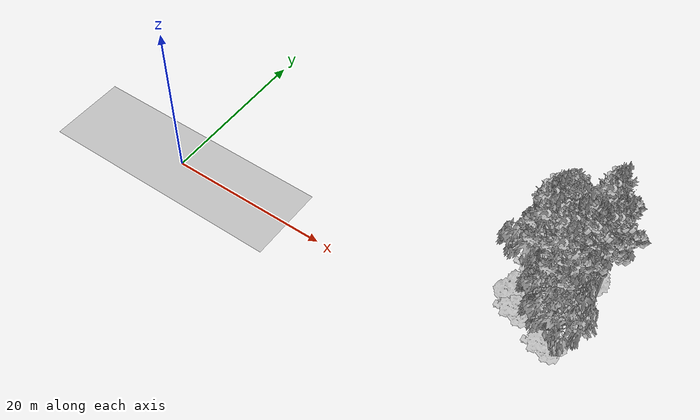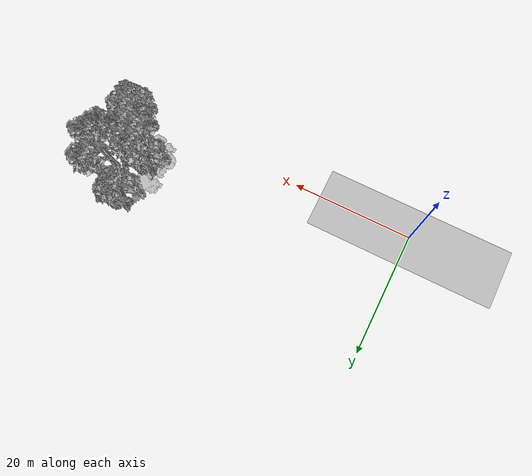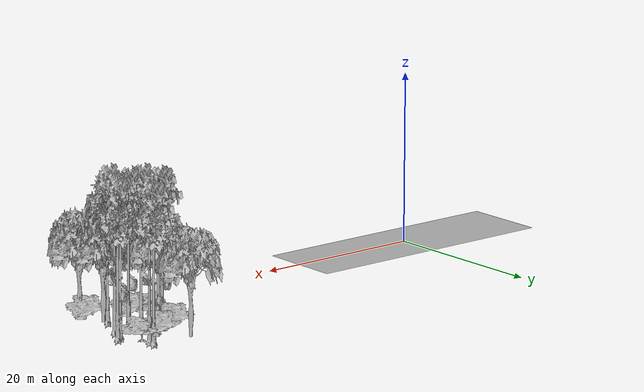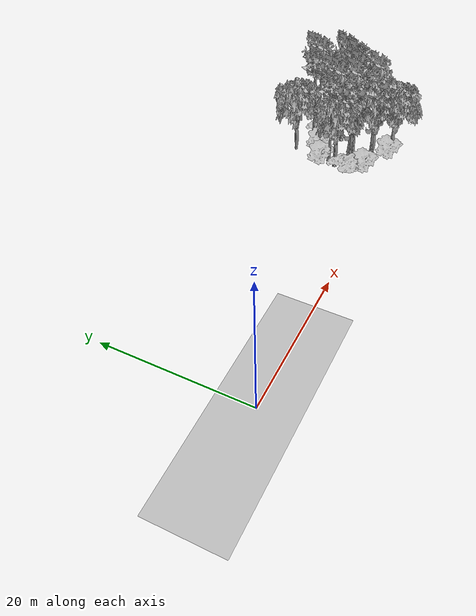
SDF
<sdf version="1.7">
 <world name="default">
  <model name="ground_plane">
   <static>1</static>
   <link name="link">
    <collision name="collision">
     <pose>-50 0 0 0 -0 0</pose>
     <geometry><plane><normal>0 0 1</normal><size>100 100</size></plane></geometry>
     <surface><contact><ode><min_depth>0.01</min_depth><max_vel>0</max_vel></ode></contact></surface>
    </collision>
    <visual name="grass">
     <cast_shadows>0</cast_shadows>
     <geometry>
      <mesh>
       <scale>0.5814285714285714 0.18142857142857144 0.1</scale>
       <uri>file://grass_plane/meshes/grass_plane.dae</uri>
      </mesh>
     </geometry>
    </visual>
   </link>
  </model>
  <model name="Tree 2">
   <static>1</static>
   <pose>42.655952371906366 4.007602021695671 0 1.57079 -0 0</pose>
   <link name="link">
    <collision name="collision">
     <geometry><mesh><scale>3 2 3</scale><uri>model://tree_3/meshes/tree_3.obj</uri></mesh></geometry>
    </collision>
    <visual name="visual">
     <geometry><mesh><scale>3 2 3</scale><uri>model://tree_3/meshes/tree_3.obj</uri></mesh></geometry>
    </visual>
   </link>
  </model>
  <model name="Tree 4">
   <static>1</static>
   <pose>40.84279110203407 6.378118887128952 0 1.57079 -0 0</pose>
   <link name="link">
    <collision name="collision">
     <geometry><mesh><scale>4 2.5 4</scale><uri>model://tree_1/meshes/tree_1.obj</uri></mesh></geometry>
    </collision>
    <visual name="visual">
     <geometry><mesh><scale>4 2.5 4</scale><uri>model://tree_1/meshes/tree_1.obj</uri></mesh></geometry>
    </visual>
   </link>
  </model>
  <model name="Tree 18">
   <static>1</static>
   <pose>44.49626839596736 11.67631269223818 0 1.57079 -0 0</pose>
   <link name="link">
    <collision name="collision">
     <geometry><mesh><scale>3 2 3</scale><uri>model://tree_3/meshes/tree_3.obj</uri></mesh></geometry>
    </collision>
    <visual name="visual">
     <geometry><mesh><scale>3 2 3</scale><uri>model://tree_3/meshes/tree_3.obj</uri></mesh></geometry>
    </visual>
   </link>
  </model>
  <model name="Tree 43">
   <static>1</static>
   <pose>44.73826522379696 6.542842063307415 0 1.57079 -0 0</pose>
   <link name="link">
    <collision name="collision">
     <geometry><mesh><scale>3.5 5 3.5</scale><uri>model://tree_9/meshes/tree_9.obj</uri></mesh></geometry>
    </collision>
    <visual name="visual">
     <geometry><mesh><scale>3.5 5 3.5</scale><uri>model://tree_9/meshes/tree_9.obj</uri></mesh></geometry>
    </visual>
   </link>
  </model>
  <model name="Tree 84">
   <static>1</static>
   <pose>42.24227388884721 9.245253654225301 0 1.57079 -0 0</pose>
   <link name="link">
    <collision name="collision">
     <geometry><mesh><scale>3.5 5 3.5</scale><uri>model://tree_9/meshes/tree_9.obj</uri></mesh></geometry>
    </collision>
    <visual name="visual">
     <geometry><mesh><scale>3.5 5 3.5</scale><uri>model://tree_9/meshes/tree_9.obj</uri></mesh></geometry>
    </visual>
   </link>
  </model>
  <model name="Tree 107">
   <static>1</static>
   <pose>48.704224053340596 9.947067350408084 0 1.57079 -0 0</pose>
   <link name="link">
    <collision name="collision">
     <geometry><mesh><scale>3.5 5 3.5</scale><uri>model://tree_9/meshes/tree_9.obj</uri></mesh></geometry>
    </collision>
    <visual name="visual">
     <geometry><mesh><scale>3.5 5 3.5</scale><uri>model://tree_9/meshes/tree_9.obj</uri></mesh></geometry>
    </visual>
   </link>
  </model>
  <model name="Tree 116">
   <static>1</static>
   <pose>41.65307214252017 8.128079704820419 0 1.57079 -0 0</pose>
   <link name="link">
    <collision name="collision">
     <geometry><mesh><scale>3.5 5 3.5</scale><uri>model://tree_2/meshes/tree_2.obj</uri></mesh></geometry>
    </collision>
    <visual name="visual">
     <geometry><mesh><scale>3.5 5 3.5</scale><uri>model://tree_2/meshes/tree_2.obj</uri></mesh></geometry>
    </visual>
   </link>
  </model>
  <model name="Tree 140">
   <static>1</static>
   <pose>47.0773700562568 7.800837692570177 0 1.57079 -0 0</pose>
   <link name="link">
    <collision name="collision">
     <geometry><mesh><scale>3.5 5 3.5</scale><uri>model://tree_9/meshes/tree_9.obj</uri></mesh></geometry>
    </collision>
    <visual name="visual">
     <geometry><mesh><scale>3.5 5 3.5</scale><uri>model://tree_9/meshes/tree_9.obj</uri></mesh></geometry>
    </visual>
   </link>
  </model>
  <model name="Tree 151">
   <static>1</static>
   <pose>46.074264058123774 4.0331765882205985 0 1.57079 -0 0</pose>
   <link name="link">
    <collision name="collision">
     <geometry><mesh><scale>3.5 5 3.5</scale><uri>model://tree_2/meshes/tree_2.obj</uri></mesh></geometry>
    </collision>
    <visual name="visual">
     <geometry><mesh><scale>3.5 5 3.5</scale><uri>model://tree_2/meshes/tree_2.obj</uri></mesh></geometry>
    </visual>
   </link>
  </model>
  <model name="Tree 154">
   <static>1</static>
   <pose>47.42613843579346 7.671969162460989 0 1.57079 -0 0</pose>
   <link name="link">
    <collision name="collision">
     <geometry><mesh><scale>3.5 5 3.5</scale><uri>model://tree_9/meshes/tree_9.obj</uri></mesh></geometry>
    </collision>
    <visual name="visual">
     <geometry><mesh><scale>3.5 5 3.5</scale><uri>model://tree_9/meshes/tree_9.obj</uri></mesh></geometry>
    </visual>
   </link>
  </model>
  <model name="Tree 166">
   <static>1</static>
   <pose>47.058337674399525 1.8976143645502788 0 1.57079 -0 0</pose>
   <link name="link">
    <collision name="collision">
     <geometry><mesh><scale>3 2 3</scale><uri>model://tree_3/meshes/tree_3.obj</uri></mesh></geometry>
    </collision>
    <visual name="visual">
     <geometry><mesh><scale>3 2 3</scale><uri>model://tree_3/meshes/tree_3.obj</uri></mesh></geometry>
    </visual>
   </link>
  </model>
  <model name="Tree 197">
   <static>1</static>
   <pose>42.38240371955979 14.518831946486436 0 1.57079 -0 0</pose>
   <link name="link">
    <collision name="collision">
     <geometry><mesh><scale>3.5 5 3.5</scale><uri>model://tree_2/meshes/tree_2.obj</uri></mesh></geometry>
    </collision>
    <visual name="visual">
     <geometry><mesh><scale>3.5 5 3.5</scale><uri>model://tree_2/meshes/tree_2.obj</uri></mesh></geometry>
    </visual>
   </link>
  </model>
  <model name="Tree 242">
   <static>1</static>
   <pose>41.67905122594499 10.288439682378229 0 1.57079 -0 0</pose>
   <link name="link">
    <collision name="collision">
     <geometry><mesh><scale>3 2 3</scale><uri>model://tree_3/meshes/tree_3.obj</uri></mesh></geometry>
    </collision>
    <visual name="visual">
     <geometry><mesh><scale>3 2 3</scale><uri>model://tree_3/meshes/tree_3.obj</uri></mesh></geometry>
    </visual>
   </link>
  </model>
  <model name="Tree 266">
   <static>1</static>
   <pose>46.58246104370399 12.701042707131023 0 1.57079 -0 0</pose>
   <link name="link">
    <collision name="collision">
     <geometry><mesh><scale>3.5 5 3.5</scale><uri>model://tree_9/meshes/tree_9.obj</uri></mesh></geometry>
    </collision>
    <visual name="visual">
     <geometry><mesh><scale>3.5 5 3.5</scale><uri>model://tree_9/meshes/tree_9.obj</uri></mesh></geometry>
    </visual>
   </link>
  </model>
  <model name="Tree 279">
   <static>1</static>
   <pose>47.592455073345604 1.697116286551811 0 1.57079 -0 0</pose>
   <link name="link">
    <collision name="collision">
     <geometry><mesh><scale>3.5 5 3.5</scale><uri>model://tree_2/meshes/tree_2.obj</uri></mesh></geometry>
    </collision>
    <visual name="visual">
     <geometry><mesh><scale>3.5 5 3.5</scale><uri>model://tree_2/meshes/tree_2.obj</uri></mesh></geometry>
    </visual>
   </link>
  </model>
  <model name="Tree 308">
   <static>1</static>
   <pose>45.35399453964577 7.370468211473561 0 1.57079 -0 0</pose>
   <link name="link">
    <collision name="collision">
     <geometry><mesh><scale>3.5 5 3.5</scale><uri>model://tree_9/meshes/tree_9.obj</uri></mesh></geometry>
    </collision>
    <visual name="visual">
     <geometry><mesh><scale>3.5 5 3.5</scale><uri>model://tree_9/meshes/tree_9.obj</uri></mesh></geometry>
    </visual>
   </link>
  </model>
  <model name="Tree 318">
   <static>1</static>
   <pose>46.32023275670271 4.258656963878746 0 1.57079 -0 0</pose>
   <link name="link">
    <collision name="collision">
     <geometry><mesh><scale>3.5 5 3.5</scale><uri>model://tree_2/meshes/tree_2.obj</uri></mesh></geometry>
    </collision>
    <visual name="visual">
     <geometry><mesh><scale>3.5 5 3.5</scale><uri>model://tree_2/meshes/tree_2.obj</uri></mesh></geometry>
    </visual>
   </link>
  </model>
  <model name="Tree 418">
   <static>1</static>
   <pose>42.88521694559647 6.332291524232463 0 1.57079 -0 0</pose>
   <link name="link">
    <collision name="collision">
     <geometry><mesh><scale>3.5 5 3.5</scale><uri>model://tree_9/meshes/tree_9.obj</uri></mesh></geometry>
    </collision>
    <visual name="visual">
     <geometry><mesh><scale>3.5 5 3.5</scale><uri>model://tree_9/meshes/tree_9.obj</uri></mesh></geometry>
    </visual>
   </link>
  </model>
  <model name="Tree 432">
   <static>1</static>
   <pose>42.06573379669152 8.275935526780717 0 1.57079 -0 0</pose>
   <link name="link">
    <collision name="collision">
     <geometry><mesh><scale>3.5 5 3.5</scale><uri>model://tree_9/meshes/tree_9.obj</uri></mesh></geometry>
    </collision>
    <visual name="visual">
     <geometry><mesh><scale>3.5 5 3.5</scale><uri>model://tree_9/meshes/tree_9.obj</uri></mesh></geometry>
    </visual>
   </link>
  </model>
  <model name="Tree 449">
   <static>1</static>
   <pose>45.76214234803854 4.182929879741103 0 1.57079 -0 0</pose>
   <link name="link">
    <collision name="collision">
     <geometry><mesh><scale>3.5 5 3.5</scale><uri>model://tree_9/meshes/tree_9.obj</uri></mesh></geometry>
    </collision>
    <visual name="visual">
     <geometry><mesh><scale>3.5 5 3.5</scale><uri>model://tree_9/meshes/tree_9.obj</uri></mesh></geometry>
    </visual>
   </link>
  </model>
  <model name="Tree 474">
   <static>1</static>
   <pose>48.14529955336219 9.644183421809103 0 1.57079 -0 0</pose>
   <link name="link">
    <collision name="collision">
     <geometry><mesh><scale>3.5 5 3.5</scale><uri>model://tree_9/meshes/tree_9.obj</uri></mesh></geometry>
    </collision>
    <visual name="visual">
     <geometry><mesh><scale>3.5 5 3.5</scale><uri>model://tree_9/meshes/tree_9.obj</uri></mesh></geometry>
    </visual>
   </link>
  </model>
  <model name="Tree 476">
   <static>1</static>
   <pose>47.39889607163167 12.432757189725187 0 1.57079 -0 0</pose>
   <link name="link">
    <collision name="collision">
     <geometry><mesh><scale>4 2.5 4</scale><uri>model://tree_1/meshes/tree_1.obj</uri></mesh></geometry>
    </collision>
    <visual name="visual">
     <geometry><mesh><scale>4 2.5 4</scale><uri>model://tree_1/meshes/tree_1.obj</uri></mesh></geometry>
    </visual>
   </link>
  </model>
  <model name="Tree 516">
   <static>1</static>
   <pose>46.68219892044509 13.585664636642669 0 1.57079 -0 0</pose>
   <link name="link">
    <collision name="collision">
     <geometry><mesh><scale>3.5 5 3.5</scale><uri>model://tree_9/meshes/tree_9.obj</uri></mesh></geometry>
    </collision>
    <visual name="visual">
     <geometry><mesh><scale>3.5 5 3.5</scale><uri>model://tree_9/meshes/tree_9.obj</uri></mesh></geometry>
    </visual>
   </link>
  </model>
 </world>
</sdf>
